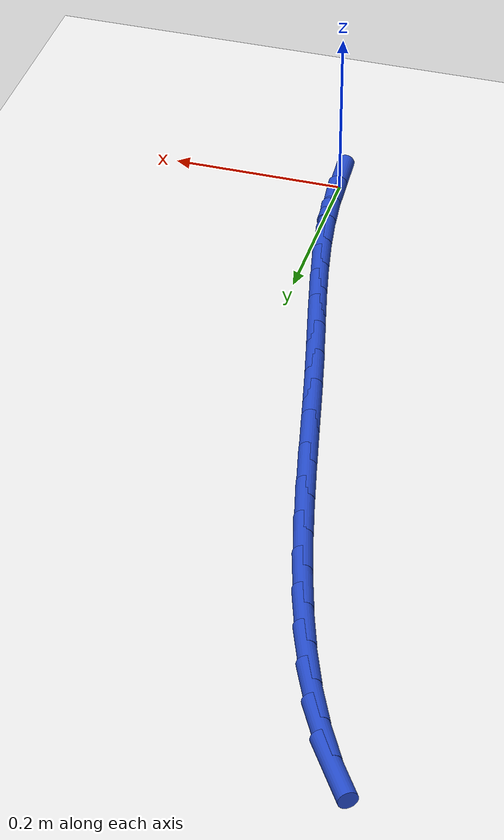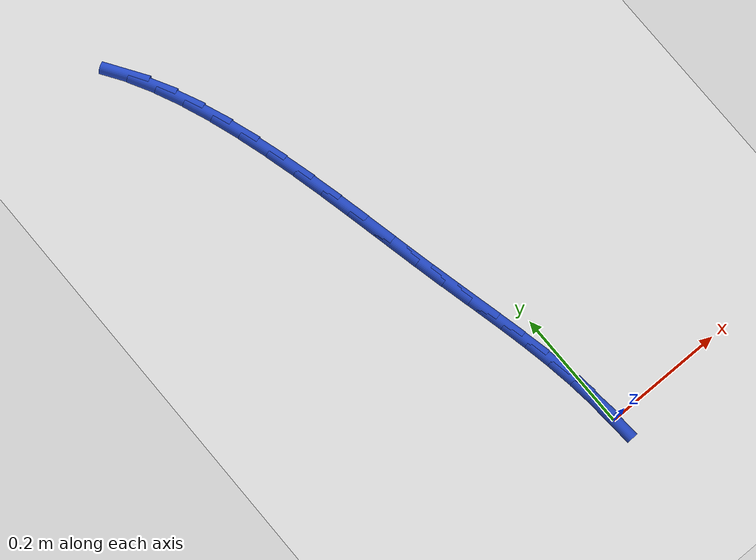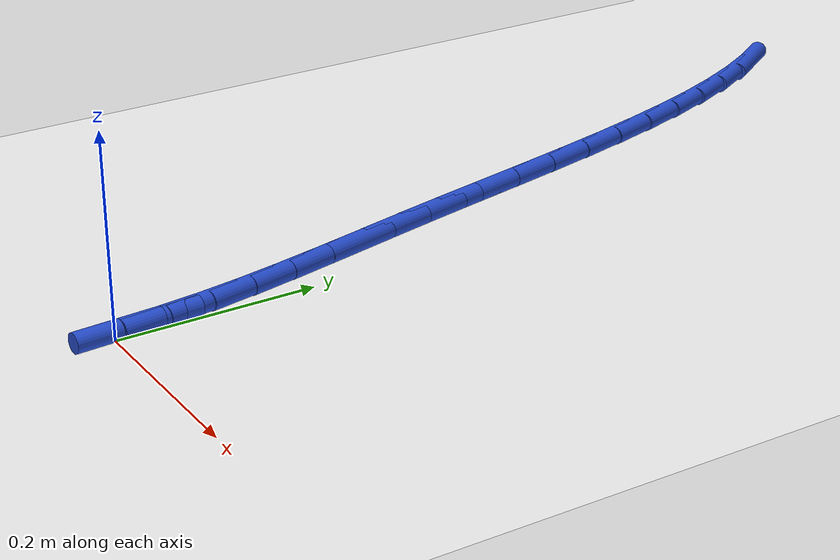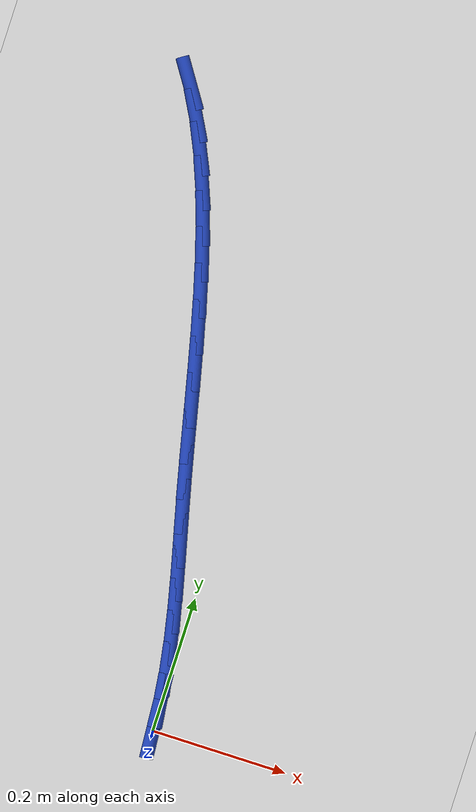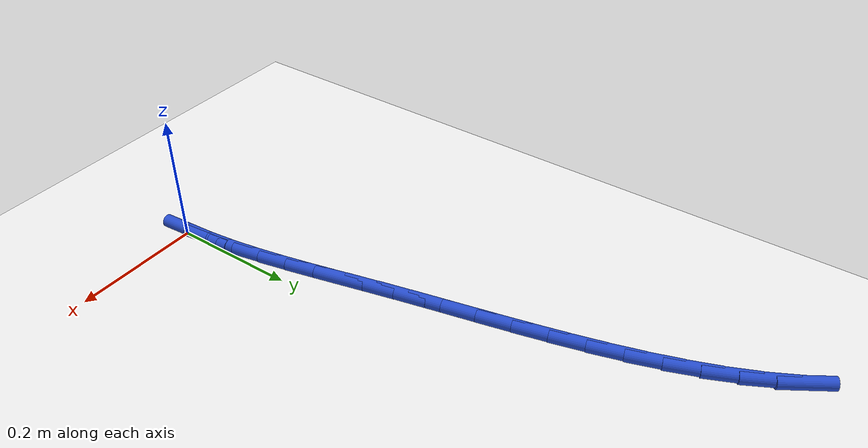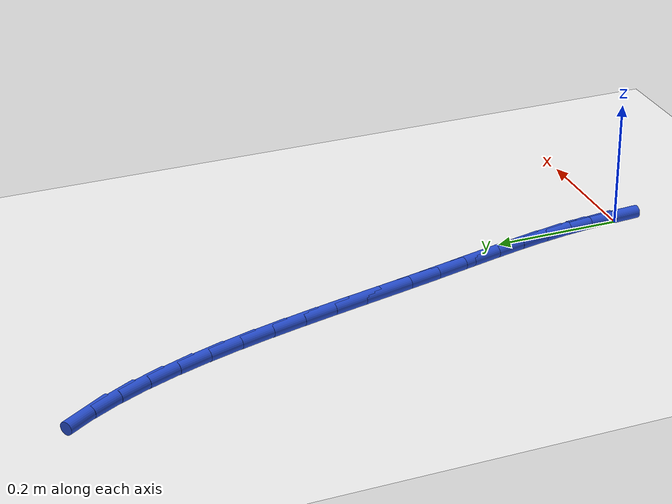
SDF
<sdf version="1.6">
 <world name="default">
  <model name="ground_plane">
   <static>1</static>
   <link name="link">
    <collision name="collision">
     <geometry><plane><normal>0 0 1</normal><size>100 100</size></plane></geometry>
     <surface><friction><ode><mu>100</mu><mu2>50</mu2></ode></friction></surface>
    </collision>
    <visual name="visual">
     <cast_shadows>0</cast_shadows>
     <geometry><plane><normal>0 0 1</normal><size>100 100</size></plane></geometry>
     <material>
      <script><uri>file://media/materials/scripts/gazebo.material</uri><name>Gazebo/WhiteGlow</name></script>
     </material>
    </visual>
   </link>
  </model>
  <model name="line">
   <link name="link_1">
    <pose>-0.0030427054938025073 0.04571245630444607 0.01 0 1.57 -1.45107952147091</pose>
    <collision name="collision">
     <geometry><cylinder><radius>0.01</radius><length>0.08</length></cylinder></geometry>
    </collision>
    <visual name="visual">
     <material>
      <script><name>Gazebo/Blue</name><uri>file://media/materials/scripts/gazebo.material</uri></script>
     </material>
     <geometry><cylinder><radius>0.01</radius><length>0.08</length></cylinder></geometry>
    </visual>
   </link>
   <link name="link_2">
    <pose>-0.00849415834184347 0.09103094188991863 0.01 0 1.57 -1.407155002265236</pose>
    <collision name="collision">
     <geometry><cylinder><radius>0.01</radius><length>0.08</length></cylinder></geometry>
    </collision>
    <visual name="visual">
     <material>
      <script><name>Gazebo/Blue</name><uri>file://media/materials/scripts/gazebo.material</uri></script>
     </material>
     <geometry><cylinder><radius>0.01</radius><length>0.08</length></cylinder></geometry>
    </visual>
   </link>
   <link name="link_3">
    <pose>-0.01595622686582074 0.13622332655075753 0.01 0 1.57 -1.3732369924228394</pose>
    <collision name="collision">
     <geometry><cylinder><radius>0.01</radius><length>0.08</length></cylinder></geometry>
    </collision>
    <visual name="visual">
     <material>
      <script><name>Gazebo/Blue</name><uri>file://media/materials/scripts/gazebo.material</uri></script>
     </material>
     <geometry><cylinder><radius>0.01</radius><length>0.08</length></cylinder></geometry>
    </visual>
   </link>
   <link name="link_4">
    <pose>-0.02503077938743218 0.18155748008130265 0.01 0 1.57 -1.3495536382806632</pose>
    <collision name="collision">
     <geometry><cylinder><radius>0.01</radius><length>0.08</length></cylinder></geometry>
    </collision>
    <visual name="visual">
     <material>
      <script><name>Gazebo/Blue</name><uri>file://media/materials/scripts/gazebo.material</uri></script>
     </material>
     <geometry><cylinder><radius>0.01</radius><length>0.08</length></cylinder></geometry>
    </visual>
   </link>
   <link name="link_5">
    <pose>-0.03531968422837564 0.22730127227589397 0.01 0 1.57 -1.3359844732217534</pose>
    <collision name="collision">
     <geometry><cylinder><radius>0.01</radius><length>0.08</length></cylinder></geometry>
    </collision>
    <visual name="visual">
     <material>
      <script><name>Gazebo/Blue</name><uri>file://media/materials/scripts/gazebo.material</uri></script>
     </material>
     <geometry><cylinder><radius>0.01</radius><length>0.08</length></cylinder></geometry>
    </visual>
   </link>
   <link name="link_6">
    <pose>-0.04642480971034898 0.27372257292887126 0.01 0 1.57 -1.332155314871425</pose>
    <collision name="collision">
     <geometry><cylinder><radius>0.01</radius><length>0.08</length></cylinder></geometry>
    </collision>
    <visual name="visual">
     <material>
      <script><name>Gazebo/Blue</name><uri>file://media/materials/scripts/gazebo.material</uri></script>
     </material>
     <geometry><cylinder><radius>0.01</radius><length>0.08</length></cylinder></geometry>
    </visual>
   </link>
   <link name="link_7">
    <pose>-0.057948024155050015 0.32108925183457443 0.01 0 1.57 -1.3374973319157837</pose>
    <collision name="collision">
     <geometry><cylinder><radius>0.01</radius><length>0.08</length></cylinder></geometry>
    </collision>
    <visual name="visual">
     <material>
      <script><name>Gazebo/Blue</name><uri>file://media/materials/scripts/gazebo.material</uri></script>
     </material>
     <geometry><cylinder><radius>0.01</radius><length>0.08</length></cylinder></geometry>
    </visual>
   </link>
   <link name="link_8">
    <pose>-0.06949173861082648 0.36966860884442676 0.01 0 1.57 -1.3472967883934805</pose>
    <collision name="collision">
     <geometry><cylinder><radius>0.01</radius><length>0.08</length></cylinder></geometry>
    </collision>
    <visual name="visual">
     <material>
      <script><name>Gazebo/Blue</name><uri>file://media/materials/scripts/gazebo.material</uri></script>
     </material>
     <geometry><cylinder><radius>0.01</radius><length>0.08</length></cylinder></geometry>
    </visual>
   </link>
   <link name="link_9">
    <pose>-0.08082927268576917 0.41954846465025203 0.01 0 1.57 -1.3517249105626874</pose>
    <collision name="collision">
     <geometry><cylinder><radius>0.01</radius><length>0.08</length></cylinder></geometry>
    </collision>
    <visual name="visual">
     <material>
      <script><name>Gazebo/Blue</name><uri>file://media/materials/scripts/gazebo.material</uri></script>
     </material>
     <geometry><cylinder><radius>0.01</radius><length>0.08</length></cylinder></geometry>
    </visual>
   </link>
   <link name="link_10">
    <pose>-0.09214722640607918 0.47038263463581304 0.01 0 1.57 -1.3497383260465365</pose>
    <collision name="collision">
     <geometry><cylinder><radius>0.01</radius><length>0.08</length></cylinder></geometry>
    </collision>
    <visual name="visual">
     <material>
      <script><name>Gazebo/Blue</name><uri>file://media/materials/scripts/gazebo.material</uri></script>
     </material>
     <geometry><cylinder><radius>0.01</radius><length>0.08</length></cylinder></geometry>
    </visual>
   </link>
   <link name="link_11">
    <pose>-0.10369343362054248 0.5217606296524778 0.01 0 1.57 -1.3415094560227243</pose>
    <collision name="collision">
     <geometry><cylinder><radius>0.01</radius><length>0.08</length></cylinder></geometry>
    </collision>
    <visual name="visual">
     <material>
      <script><name>Gazebo/Blue</name><uri>file://media/materials/scripts/gazebo.material</uri></script>
     </material>
     <geometry><cylinder><radius>0.01</radius><length>0.08</length></cylinder></geometry>
    </visual>
   </link>
   <link name="link_12">
    <pose>-0.11571572817794502 0.5732719605516144 0.01 0 1.57 -1.3269629741051594</pose>
    <collision name="collision">
     <geometry><cylinder><radius>0.01</radius><length>0.08</length></cylinder></geometry>
    </collision>
    <visual name="visual">
     <material>
      <script><name>Gazebo/Blue</name><uri>file://media/materials/scripts/gazebo.material</uri></script>
     </material>
     <geometry><cylinder><radius>0.01</radius><length>0.08</length></cylinder></geometry>
    </visual>
   </link>
   <link name="link_13">
    <pose>-0.12846194392707277 0.6245061381845911 0.01 0 1.57 -1.3057866907008948</pose>
    <collision name="collision">
     <geometry><cylinder><radius>0.01</radius><length>0.08</length></cylinder></geometry>
    </collision>
    <visual name="visual">
     <material>
      <script><name>Gazebo/Blue</name><uri>file://media/materials/scripts/gazebo.material</uri></script>
     </material>
     <geometry><cylinder><radius>0.01</radius><length>0.08</length></cylinder></geometry>
    </visual>
   </link>
   <link name="link_14">
    <pose>-0.14217991471671163 0.6750526734027752 0.01 0 1.57 -1.2774289244057941</pose>
    <collision name="collision">
     <geometry><cylinder><radius>0.01</radius><length>0.08</length></cylinder></geometry>
    </collision>
    <visual name="visual">
     <material>
      <script><name>Gazebo/Blue</name><uri>file://media/materials/scripts/gazebo.material</uri></script>
     </material>
     <geometry><cylinder><radius>0.01</radius><length>0.08</length></cylinder></geometry>
    </visual>
   </link>
   <link name="link_15">
    <pose>-0.15711747439564763 0.7245010770575351 0.01 0 1.57 -1.2410873220389003</pose>
    <collision name="collision">
     <geometry><cylinder><radius>0.01</radius><length>0.08</length></cylinder></geometry>
    </collision>
    <visual name="visual">
     <material>
      <script><name>Gazebo/Blue</name><uri>file://media/materials/scripts/gazebo.material</uri></script>
     </material>
     <geometry><cylinder><radius>0.01</radius><length>0.08</length></cylinder></geometry>
    </visual>
   </link>
   <link name="link_16">
    <pose>-0.17352245681266668 0.7724408600002384 0.01 0 1.57 -1.195697009561171</pose>
    <collision name="collision">
     <geometry><cylinder><radius>0.01</radius><length>0.08</length></cylinder></geometry>
    </collision>
    <visual name="visual">
     <material>
      <script><name>Gazebo/Blue</name><uri>file://media/materials/scripts/gazebo.material</uri></script>
     </material>
     <geometry><cylinder><radius>0.01</radius><length>0.08</length></cylinder></geometry>
    </visual>
   </link>
   <link name="link_17">
    <pose>-0.19164269581655477 0.8184615330822536 0.01 0 1.57 -1.1399327570016071</pose>
    <collision name="collision">
     <geometry><cylinder><radius>0.01</radius><length>0.08</length></cylinder></geometry>
    </collision>
    <visual name="visual">
     <material>
      <script><name>Gazebo/Blue</name><uri>file://media/materials/scripts/gazebo.material</uri></script>
     </material>
     <geometry><cylinder><radius>0.01</radius><length>0.08</length></cylinder></geometry>
    </visual>
   </link>
   <link name="link_18">
    <pose>-0.2117260252560978 0.862152607154948 0.01 0 1.57 -1.0722525891120225</pose>
    <collision name="collision">
     <geometry><cylinder><radius>0.01</radius><length>0.08</length></cylinder></geometry>
    </collision>
    <visual name="visual">
     <material>
      <script><name>Gazebo/Blue</name><uri>file://media/materials/scripts/gazebo.material</uri></script>
     </material>
     <geometry><cylinder><radius>0.01</radius><length>0.08</length></cylinder></geometry>
    </visual>
   </link>
   <link name="link_19">
    <pose>-0.23402027898008168 0.9031035930696901 0.01 0 1.57 -0.9910300129629012</pose>
    <collision name="collision">
     <geometry><cylinder><radius>0.01</radius><length>0.08</length></cylinder></geometry>
    </collision>
    <visual name="visual">
     <material>
      <script><name>Gazebo/Blue</name><uri>file://media/materials/scripts/gazebo.material</uri></script>
     </material>
     <geometry><cylinder><radius>0.01</radius><length>0.08</length></cylinder></geometry>
    </visual>
   </link>
   <link name="link_170">
    <pose>-1.0408340855860843e-17 1.3877787807814457e-16 0.01 0 1.57 -1.5025287535574465</pose>
    <collision name="collision">
     <geometry><cylinder><radius>0.01</radius><length>0.08</length></cylinder></geometry>
    </collision>
    <visual name="visual">
     <material>
      <script><name>Gazebo/Blue</name><uri>file://media/materials/scripts/gazebo.material</uri></script>
     </material>
     <geometry><cylinder><radius>0.01</radius><length>0.08</length></cylinder></geometry>
    </visual>
   </link>
   <link name="link_171">
    <pose>-0.0031197549832072055 0.04562791424446472 0.01 0 1.57 -1.5025287535574468</pose>
    <collision name="collision">
     <geometry><cylinder><radius>0.01</radius><length>0.08</length></cylinder></geometry>
    </collision>
    <visual name="visual">
     <material>
      <script><name>Gazebo/Blue</name><uri>file://media/materials/scripts/gazebo.material</uri></script>
     </material>
     <geometry><cylinder><radius>0.01</radius><length>0.08</length></cylinder></geometry>
    </visual>
   </link>
  </model>
 </world>
</sdf>
